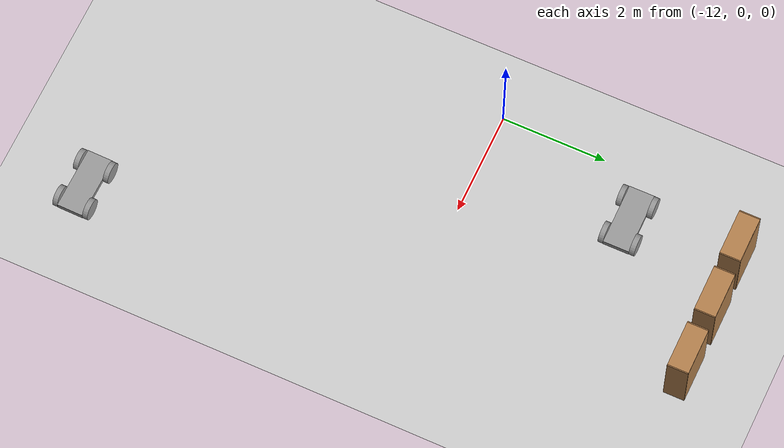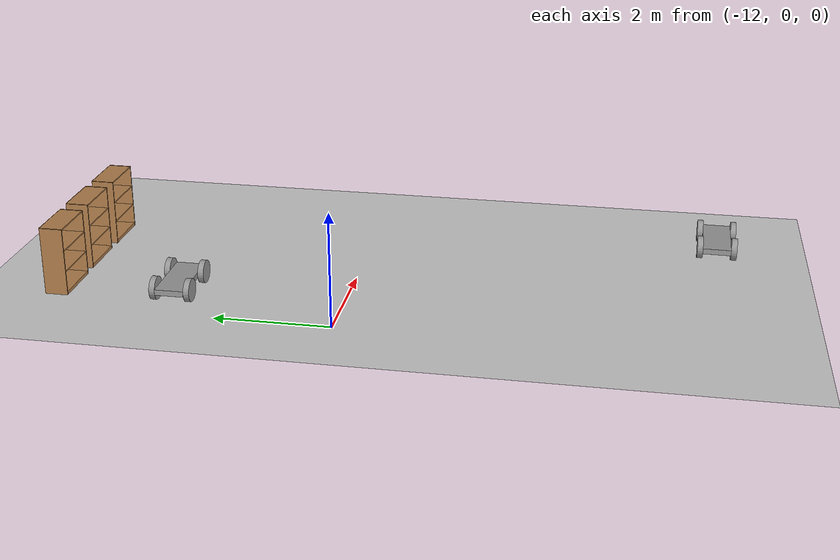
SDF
<sdf version="1.6">
 <world name="default">
  <model name="ground_plane">
   <static>1</static>
   <link name="link">
    <collision name="collision">
     <geometry><plane><normal>0 0 1</normal><size>100 100</size></plane></geometry>
     <surface>
      <contact><collide_bitmask>65535</collide_bitmask></contact>
      <friction><ode><mu>100</mu><mu2>50</mu2></ode></friction>
     </surface>
    </collision>
    <visual name="visual">
     <cast_shadows>0</cast_shadows>
     <geometry><plane><normal>0 0 1</normal><size>100 100</size></plane></geometry>
     <material>
      <script><uri>file://media/materials/scripts/gazebo.material</uri><name>Gazebo/Grey</name></script>
     </material>
    </visual>
   </link>
  </model>
  <model name="bookshelf">
   <static>1</static>
   <link name="link">
    <inertial><mass>1</mass></inertial>
    <collision name="back">
     <pose>0 0.005 0.6 0 -0 0</pose>
     <geometry><box><size>0.9 0.01 1.2</size></box></geometry>
    </collision>
    <visual name="visual1">
     <pose>0 0.005 0.6 0 -0 0</pose>
     <geometry><box><size>0.9 0.01 1.2</size></box></geometry>
     <material>
      <script><uri>file://media/materials/scripts/gazebo.material</uri><name>Gazebo/Wood</name></script>
     </material>
    </visual>
    <collision name="left_side">
     <pose>0.45 -0.195 0.6 0 -0 0</pose>
     <geometry><box><size>0.02 0.4 1.2</size></box></geometry>
    </collision>
    <visual name="visual2">
     <pose>0.45 -0.195 0.6 0 -0 0</pose>
     <geometry><box><size>0.02 0.4 1.2</size></box></geometry>
     <material>
      <script><uri>file://media/materials/scripts/gazebo.material</uri><name>Gazebo/Wood</name></script>
     </material>
    </visual>
    <collision name="right_side">
     <pose>-0.45 -0.195 0.6 0 -0 0</pose>
     <geometry><box><size>0.02 0.4 1.2</size></box></geometry>
    </collision>
    <visual name="visual3">
     <pose>-0.45 -0.195 0.6 0 -0 0</pose>
     <geometry><box><size>0.02 0.4 1.2</size></box></geometry>
     <material>
      <script><uri>file://media/materials/scripts/gazebo.material</uri><name>Gazebo/Wood</name></script>
     </material>
    </visual>
    <collision name="bottom">
     <pose>0 -0.195 0.03 0 -0 0</pose>
     <geometry><box><size>0.88 0.4 0.06</size></box></geometry>
    </collision>
    <visual name="visual4">
     <pose>0 -0.195 0.03 0 -0 0</pose>
     <geometry><box><size>0.88 0.4 0.06</size></box></geometry>
     <material>
      <script><uri>file://media/materials/scripts/gazebo.material</uri><name>Gazebo/Wood</name></script>
     </material>
    </visual>
    <collision name="top">
     <pose>0 -0.195 1.19 0 -0 0</pose>
     <geometry><box><size>0.88 0.4 0.02</size></box></geometry>
    </collision>
    <visual name="visual5">
     <pose>0 -0.195 1.19 0 -0 0</pose>
     <geometry><box><size>0.88 0.4 0.02</size></box></geometry>
     <material>
      <script><uri>file://media/materials/scripts/gazebo.material</uri><name>Gazebo/Wood</name></script>
     </material>
    </visual>
    <collision name="low_shelf">
     <pose>0 -0.195 0.43 0 -0 0</pose>
     <geometry><box><size>0.88 0.4 0.02</size></box></geometry>
    </collision>
    <visual name="visual6">
     <pose>0 -0.195 0.43 0 -0 0</pose>
     <geometry><box><size>0.88 0.4 0.02</size></box></geometry>
     <material>
      <script><uri>file://media/materials/scripts/gazebo.material</uri><name>Gazebo/Wood</name></script>
     </material>
    </visual>
    <collision name="high_shelf">
     <pose>0 -0.195 0.8 0 -0 0</pose>
     <geometry><box><size>0.88 0.4 0.02</size></box></geometry>
    </collision>
    <visual name="visual7">
     <pose>0 -0.195 0.8 0 -0 0</pose>
     <geometry><box><size>0.88 0.4 0.02</size></box></geometry>
     <material>
      <script><uri>file://media/materials/scripts/gazebo.material</uri><name>Gazebo/Wood</name></script>
     </material>
    </visual>
   </link>
   <pose>-11.095 5.12258 0 0 -0 0</pose>
  </model>
  <model name="bookshelf_clone">
   <static>1</static>
   <link name="link">
    <inertial><mass>1</mass></inertial>
    <collision name="back">
     <pose>0 0.005 0.6 0 -0 0</pose>
     <geometry><box><size>0.9 0.01 1.2</size></box></geometry>
    </collision>
    <visual name="visual1">
     <pose>0 0.005 0.6 0 -0 0</pose>
     <geometry><box><size>0.9 0.01 1.2</size></box></geometry>
     <material>
      <script><uri>file://media/materials/scripts/gazebo.material</uri><name>Gazebo/Wood</name></script>
     </material>
    </visual>
    <collision name="left_side">
     <pose>0.45 -0.195 0.6 0 -0 0</pose>
     <geometry><box><size>0.02 0.4 1.2</size></box></geometry>
    </collision>
    <visual name="visual2">
     <pose>0.45 -0.195 0.6 0 -0 0</pose>
     <geometry><box><size>0.02 0.4 1.2</size></box></geometry>
     <material>
      <script><uri>file://media/materials/scripts/gazebo.material</uri><name>Gazebo/Wood</name></script>
     </material>
    </visual>
    <collision name="right_side">
     <pose>-0.45 -0.195 0.6 0 -0 0</pose>
     <geometry><box><size>0.02 0.4 1.2</size></box></geometry>
    </collision>
    <visual name="visual3">
     <pose>-0.45 -0.195 0.6 0 -0 0</pose>
     <geometry><box><size>0.02 0.4 1.2</size></box></geometry>
     <material>
      <script><uri>file://media/materials/scripts/gazebo.material</uri><name>Gazebo/Wood</name></script>
     </material>
    </visual>
    <collision name="bottom">
     <pose>0 -0.195 0.03 0 -0 0</pose>
     <geometry><box><size>0.88 0.4 0.06</size></box></geometry>
    </collision>
    <visual name="visual4">
     <pose>0 -0.195 0.03 0 -0 0</pose>
     <geometry><box><size>0.88 0.4 0.06</size></box></geometry>
     <material>
      <script><uri>file://media/materials/scripts/gazebo.material</uri><name>Gazebo/Wood</name></script>
     </material>
    </visual>
    <collision name="top">
     <pose>0 -0.195 1.19 0 -0 0</pose>
     <geometry><box><size>0.88 0.4 0.02</size></box></geometry>
    </collision>
    <visual name="visual5">
     <pose>0 -0.195 1.19 0 -0 0</pose>
     <geometry><box><size>0.88 0.4 0.02</size></box></geometry>
     <material>
      <script><uri>file://media/materials/scripts/gazebo.material</uri><name>Gazebo/Wood</name></script>
     </material>
    </visual>
    <collision name="low_shelf">
     <pose>0 -0.195 0.43 0 -0 0</pose>
     <geometry><box><size>0.88 0.4 0.02</size></box></geometry>
    </collision>
    <visual name="visual6">
     <pose>0 -0.195 0.43 0 -0 0</pose>
     <geometry><box><size>0.88 0.4 0.02</size></box></geometry>
     <material>
      <script><uri>file://media/materials/scripts/gazebo.material</uri><name>Gazebo/Wood</name></script>
     </material>
    </visual>
    <collision name="high_shelf">
     <pose>0 -0.195 0.8 0 -0 0</pose>
     <geometry><box><size>0.88 0.4 0.02</size></box></geometry>
    </collision>
    <visual name="visual7">
     <pose>0 -0.195 0.8 0 -0 0</pose>
     <geometry><box><size>0.88 0.4 0.02</size></box></geometry>
     <material>
      <script><uri>file://media/materials/scripts/gazebo.material</uri><name>Gazebo/Wood</name></script>
     </material>
    </visual>
   </link>
   <pose>-9.92346 5.1367 0 0 -0 0</pose>
  </model>
  <model name="bookshelf_clone_0">
   <static>1</static>
   <link name="link">
    <inertial><mass>1</mass></inertial>
    <collision name="back">
     <pose>0 0.005 0.6 0 -0 0</pose>
     <geometry><box><size>0.9 0.01 1.2</size></box></geometry>
    </collision>
    <visual name="visual1">
     <pose>0 0.005 0.6 0 -0 0</pose>
     <geometry><box><size>0.9 0.01 1.2</size></box></geometry>
     <material>
      <script><uri>file://media/materials/scripts/gazebo.material</uri><name>Gazebo/Wood</name></script>
     </material>
    </visual>
    <collision name="left_side">
     <pose>0.45 -0.195 0.6 0 -0 0</pose>
     <geometry><box><size>0.02 0.4 1.2</size></box></geometry>
    </collision>
    <visual name="visual2">
     <pose>0.45 -0.195 0.6 0 -0 0</pose>
     <geometry><box><size>0.02 0.4 1.2</size></box></geometry>
     <material>
      <script><uri>file://media/materials/scripts/gazebo.material</uri><name>Gazebo/Wood</name></script>
     </material>
    </visual>
    <collision name="right_side">
     <pose>-0.45 -0.195 0.6 0 -0 0</pose>
     <geometry><box><size>0.02 0.4 1.2</size></box></geometry>
    </collision>
    <visual name="visual3">
     <pose>-0.45 -0.195 0.6 0 -0 0</pose>
     <geometry><box><size>0.02 0.4 1.2</size></box></geometry>
     <material>
      <script><uri>file://media/materials/scripts/gazebo.material</uri><name>Gazebo/Wood</name></script>
     </material>
    </visual>
    <collision name="bottom">
     <pose>0 -0.195 0.03 0 -0 0</pose>
     <geometry><box><size>0.88 0.4 0.06</size></box></geometry>
    </collision>
    <visual name="visual4">
     <pose>0 -0.195 0.03 0 -0 0</pose>
     <geometry><box><size>0.88 0.4 0.06</size></box></geometry>
     <material>
      <script><uri>file://media/materials/scripts/gazebo.material</uri><name>Gazebo/Wood</name></script>
     </material>
    </visual>
    <collision name="top">
     <pose>0 -0.195 1.19 0 -0 0</pose>
     <geometry><box><size>0.88 0.4 0.02</size></box></geometry>
    </collision>
    <visual name="visual5">
     <pose>0 -0.195 1.19 0 -0 0</pose>
     <geometry><box><size>0.88 0.4 0.02</size></box></geometry>
     <material>
      <script><uri>file://media/materials/scripts/gazebo.material</uri><name>Gazebo/Wood</name></script>
     </material>
    </visual>
    <collision name="low_shelf">
     <pose>0 -0.195 0.43 0 -0 0</pose>
     <geometry><box><size>0.88 0.4 0.02</size></box></geometry>
    </collision>
    <visual name="visual6">
     <pose>0 -0.195 0.43 0 -0 0</pose>
     <geometry><box><size>0.88 0.4 0.02</size></box></geometry>
     <material>
      <script><uri>file://media/materials/scripts/gazebo.material</uri><name>Gazebo/Wood</name></script>
     </material>
    </visual>
    <collision name="high_shelf">
     <pose>0 -0.195 0.8 0 -0 0</pose>
     <geometry><box><size>0.88 0.4 0.02</size></box></geometry>
    </collision>
    <visual name="visual7">
     <pose>0 -0.195 0.8 0 -0 0</pose>
     <geometry><box><size>0.88 0.4 0.02</size></box></geometry>
     <material>
      <script><uri>file://media/materials/scripts/gazebo.material</uri><name>Gazebo/Wood</name></script>
     </material>
    </visual>
   </link>
   <pose>-8.74874 5.12719 0 0 -0 0</pose>
  </model>
  <model name="robot">
   <link name="link">
    <inertial>
     <mass>1</mass>
     <inertia>
      <ixx>0.166667</ixx>
      <ixy>0</ixy>
      <ixz>0</ixz>
      <iyy>0.166667</iyy>
      <iyz>0</iyz>
      <izz>0.166667</izz>
     </inertia>
    </inertial>
    <visual name="visual">
     <geometry><box><size>1.2 0.5 0.1</size></box></geometry>
     <material>
      <script><name>Gazebo/Grey</name><uri>file://media/materials/scripts/gazebo.material</uri></script>
      <shader type="pixel"><normal_map>__default__</normal_map></shader>
      <ambient>0.3 0.3 0.3 1</ambient>
      <diffuse>0.7 0.7 0.7 1</diffuse>
      <specular>0.01 0.01 0.01 1</specular>
      <emissive>0 0 0 1</emissive>
     </material>
    </visual>
    <collision name="collision">
     <geometry><box><size>1.2 0.5 0.1</size></box></geometry>
     <surface>
      <friction>
       <ode><mu>1</mu><mu2>1</mu2><fdir1>0 0 0</fdir1><slip1>0</slip1><slip2>0</slip2></ode>
       <torsional>
        <coefficient>1</coefficient>
        <patch_radius>0</patch_radius>
        <surface_radius>0</surface_radius>
        <use_patch_radius>1</use_patch_radius>
        <ode><slip>0</slip></ode>
       </torsional>
      </friction>
      <bounce><restitution_coefficient>0</restitution_coefficient><threshold>1e+06</threshold></bounce>
      <contact>
       <collide_without_contact>0</collide_without_contact>
       <collide_without_contact_bitmask>1</collide_without_contact_bitmask>
       <collide_bitmask>1</collide_bitmask>
       <ode>
        <soft_cfm>0</soft_cfm>
        <soft_erp>0.2</soft_erp>
        <kp>1e+13</kp>
        <kd>1</kd>
        <max_vel>0.01</max_vel>
        <min_depth>0</min_depth>
       </ode>
       <bullet>
        <split_impulse>1</split_impulse>
        <split_impulse_penetration_threshold>-0.01</split_impulse_penetration_threshold>
        <soft_cfm>0</soft_cfm>
        <soft_erp>0.2</soft_erp>
        <kp>1e+13</kp>
        <kd>1</kd>
       </bullet>
      </contact>
     </surface>
    </collision>
   </link>
   <link name="link_0">
    <pose>-0.4 0.300019 -0 0 -0 0</pose>
    <inertial>
     <mass>1</mass>
     <inertia><ixx>0.145833</ixx><ixy>0</ixy><ixz>0</ixz><iyy>0.145833</iyy><iyz>0</iyz><izz>0.125</izz></inertia>
     <pose>0 0 0 1.5707 -0 0</pose>
    </inertial>
    <visual name="visual">
     <pose>0 0 0 1.5707 -0 0</pose>
     <geometry><cylinder><radius>0.2</radius><length>0.1</length></cylinder></geometry>
     <material>
      <lighting>1</lighting>
      <script><uri>file://media/materials/scripts/gazebo.material</uri><name>Gazebo/Grey</name></script>
      <shader type="pixel"><normal_map>__default__</normal_map></shader>
      <ambient>0.3 0.3 0.3 1</ambient>
      <diffuse>0.7 0.7 0.7 1</diffuse>
      <specular>0.01 0.01 0.01 1</specular>
      <emissive>0 0 0 1</emissive>
     </material>
    </visual>
    <collision name="collision">
     <pose>0 0 0 1.5707 -0 0</pose>
     <geometry><cylinder><radius>0.2</radius><length>0.1</length></cylinder></geometry>
     <surface>
      <friction>
       <ode><mu>1</mu><mu2>1</mu2><fdir1>0 0 0</fdir1><slip1>0</slip1><slip2>0</slip2></ode>
       <torsional>
        <coefficient>1</coefficient>
        <patch_radius>0</patch_radius>
        <surface_radius>0</surface_radius>
        <use_patch_radius>1</use_patch_radius>
        <ode><slip>0</slip></ode>
       </torsional>
      </friction>
      <bounce><restitution_coefficient>0</restitution_coefficient><threshold>1e+06</threshold></bounce>
      <contact>
       <collide_without_contact>0</collide_without_contact>
       <collide_without_contact_bitmask>1</collide_without_contact_bitmask>
       <collide_bitmask>1</collide_bitmask>
       <ode>
        <soft_cfm>0</soft_cfm>
        <soft_erp>0.2</soft_erp>
        <kp>1e+13</kp>
        <kd>1</kd>
        <max_vel>0.01</max_vel>
        <min_depth>0</min_depth>
       </ode>
       <bullet>
        <split_impulse>1</split_impulse>
        <split_impulse_penetration_threshold>-0.01</split_impulse_penetration_threshold>
        <soft_cfm>0</soft_cfm>
        <soft_erp>0.2</soft_erp>
        <kp>1e+13</kp>
        <kd>1</kd>
       </bullet>
      </contact>
     </surface>
    </collision>
   </link>
   <link name="link_0_clone">
    <pose>-0.4 -0.300019 -0 0 -0 0</pose>
    <inertial>
     <mass>1</mass>
     <inertia><ixx>0.145833</ixx><ixy>0</ixy><ixz>0</ixz><iyy>0.145833</iyy><iyz>0</iyz><izz>0.125</izz></inertia>
     <pose>0 0 0 1.5707 -0 0</pose>
    </inertial>
    <visual name="visual">
     <pose>0 0 0 1.5707 -0 0</pose>
     <geometry><cylinder><radius>0.2</radius><length>0.1</length></cylinder></geometry>
     <material>
      <lighting>1</lighting>
      <script><uri>file://media/materials/scripts/gazebo.material</uri><name>Gazebo/Grey</name></script>
      <shader type="pixel"><normal_map>__default__</normal_map></shader>
      <ambient>0.3 0.3 0.3 1</ambient>
      <diffuse>0.7 0.7 0.7 1</diffuse>
      <specular>0.01 0.01 0.01 1</specular>
      <emissive>0 0 0 1</emissive>
     </material>
    </visual>
    <collision name="collision">
     <pose>0 0 0 1.5707 -0 0</pose>
     <geometry><cylinder><radius>0.2</radius><length>0.1</length></cylinder></geometry>
     <surface>
      <friction>
       <ode><mu>1</mu><mu2>1</mu2><fdir1>0 0 0</fdir1><slip1>0</slip1><slip2>0</slip2></ode>
       <torsional>
        <coefficient>1</coefficient>
        <patch_radius>0</patch_radius>
        <surface_radius>0</surface_radius>
        <use_patch_radius>1</use_patch_radius>
        <ode><slip>0</slip></ode>
       </torsional>
      </friction>
      <bounce><restitution_coefficient>0</restitution_coefficient><threshold>1e+06</threshold></bounce>
      <contact>
       <collide_without_contact>0</collide_without_contact>
       <collide_without_contact_bitmask>1</collide_without_contact_bitmask>
       <collide_bitmask>1</collide_bitmask>
       <ode>
        <soft_cfm>0</soft_cfm>
        <soft_erp>0.2</soft_erp>
        <kp>1e+13</kp>
        <kd>1</kd>
        <max_vel>0.01</max_vel>
        <min_depth>0</min_depth>
       </ode>
       <bullet>
        <split_impulse>1</split_impulse>
        <split_impulse_penetration_threshold>-0.01</split_impulse_penetration_threshold>
        <soft_cfm>0</soft_cfm>
        <soft_erp>0.2</soft_erp>
        <kp>1e+13</kp>
        <kd>1</kd>
       </bullet>
      </contact>
     </surface>
    </collision>
   </link>
   <link name="link_0_clone_0">
    <pose>0.4 -0.300019 -0 0 -0 0</pose>
    <inertial>
     <mass>1</mass>
     <inertia><ixx>0.145833</ixx><ixy>0</ixy><ixz>0</ixz><iyy>0.145833</iyy><iyz>0</iyz><izz>0.125</izz></inertia>
     <pose>0 0 0 1.5707 -0 0</pose>
    </inertial>
    <visual name="visual">
     <pose>0 0 0 1.5707 -0 0</pose>
     <geometry><cylinder><radius>0.2</radius><length>0.1</length></cylinder></geometry>
     <material>
      <lighting>1</lighting>
      <script><uri>file://media/materials/scripts/gazebo.material</uri><name>Gazebo/Grey</name></script>
      <shader type="pixel"><normal_map>__default__</normal_map></shader>
      <ambient>0.3 0.3 0.3 1</ambient>
      <diffuse>0.7 0.7 0.7 1</diffuse>
      <specular>0.01 0.01 0.01 1</specular>
      <emissive>0 0 0 1</emissive>
     </material>
    </visual>
    <collision name="collision">
     <pose>0 0 0 1.5707 -0 0</pose>
     <geometry><cylinder><radius>0.2</radius><length>0.1</length></cylinder></geometry>
     <surface>
      <friction>
       <ode><mu>1</mu><mu2>1</mu2><fdir1>0 0 0</fdir1><slip1>0</slip1><slip2>0</slip2></ode>
       <torsional>
        <coefficient>1</coefficient>
        <patch_radius>0</patch_radius>
        <surface_radius>0</surface_radius>
        <use_patch_radius>1</use_patch_radius>
        <ode><slip>0</slip></ode>
       </torsional>
      </friction>
      <bounce><restitution_coefficient>0</restitution_coefficient><threshold>1e+06</threshold></bounce>
      <contact>
       <collide_without_contact>0</collide_without_contact>
       <collide_without_contact_bitmask>1</collide_without_contact_bitmask>
       <collide_bitmask>1</collide_bitmask>
       <ode>
        <soft_cfm>0</soft_cfm>
        <soft_erp>0.2</soft_erp>
        <kp>1e+13</kp>
        <kd>1</kd>
        <max_vel>0.01</max_vel>
        <min_depth>0</min_depth>
       </ode>
       <bullet>
        <split_impulse>1</split_impulse>
        <split_impulse_penetration_threshold>-0.01</split_impulse_penetration_threshold>
        <soft_cfm>0</soft_cfm>
        <soft_erp>0.2</soft_erp>
        <kp>1e+13</kp>
        <kd>1</kd>
       </bullet>
      </contact>
     </surface>
    </collision>
   </link>
   <link name="link_0_clone_1">
    <pose>0.4 0.300019 0 0 -0 0</pose>
    <inertial>
     <mass>1</mass>
     <inertia><ixx>0.145833</ixx><ixy>0</ixy><ixz>0</ixz><iyy>0.145833</iyy><iyz>0</iyz><izz>0.125</izz></inertia>
     <pose>0 0 0 1.5707 -0 0</pose>
    </inertial>
    <visual name="visual">
     <pose>0 0 0 1.5707 -0 0</pose>
     <geometry><cylinder><radius>0.2</radius><length>0.1</length></cylinder></geometry>
     <material>
      <lighting>1</lighting>
      <script><uri>file://media/materials/scripts/gazebo.material</uri><name>Gazebo/Grey</name></script>
      <shader type="pixel"><normal_map>__default__</normal_map></shader>
      <ambient>0.3 0.3 0.3 1</ambient>
      <diffuse>0.7 0.7 0.7 1</diffuse>
      <specular>0.01 0.01 0.01 1</specular>
      <emissive>0 0 0 1</emissive>
     </material>
    </visual>
    <collision name="collision">
     <pose>0 0 0 1.5707 -0 0</pose>
     <geometry><cylinder><radius>0.2</radius><length>0.1</length></cylinder></geometry>
     <surface>
      <friction>
       <ode><mu>1</mu><mu2>1</mu2><fdir1>0 0 0</fdir1><slip1>0</slip1><slip2>0</slip2></ode>
       <torsional>
        <coefficient>1</coefficient>
        <patch_radius>0</patch_radius>
        <surface_radius>0</surface_radius>
        <use_patch_radius>1</use_patch_radius>
        <ode><slip>0</slip></ode>
       </torsional>
      </friction>
      <bounce><restitution_coefficient>0</restitution_coefficient><threshold>1e+06</threshold></bounce>
      <contact>
       <collide_without_contact>0</collide_without_contact>
       <collide_without_contact_bitmask>1</collide_without_contact_bitmask>
       <collide_bitmask>1</collide_bitmask>
       <ode>
        <soft_cfm>0</soft_cfm>
        <soft_erp>0.2</soft_erp>
        <kp>1e+13</kp>
        <kd>1</kd>
        <max_vel>0.01</max_vel>
        <min_depth>0</min_depth>
       </ode>
       <bullet>
        <split_impulse>1</split_impulse>
        <split_impulse_penetration_threshold>-0.01</split_impulse_penetration_threshold>
        <soft_cfm>0</soft_cfm>
        <soft_erp>0.2</soft_erp>
        <kp>1e+13</kp>
        <kd>1</kd>
       </bullet>
      </contact>
     </surface>
    </collision>
   </link>
   <joint name="link_JOINT_0" type="revolute">
    <parent>link</parent>
    <child>link_0_clone</child>
    <axis>
     <xyz>0 0 1</xyz>
     <use_parent_model_frame>0</use_parent_model_frame>
     <limit>
      <lower>-1.79769e+308</lower>
      <upper>1.79769e+308</upper>
      <effort>-1</effort>
      <velocity>-1</velocity>
     </limit>
     <dynamics>
      <spring_reference>0</spring_reference>
      <spring_stiffness>0</spring_stiffness>
      <damping>0</damping>
     </dynamics>
    </axis>
    <physics>
     <ode><limit><cfm>0</cfm><erp>0.2</erp></limit><suspension><cfm>0</cfm><erp>0.2</erp></suspension></ode>
    </physics>
   </joint>
   <joint name="link_JOINT_1" type="revolute">
    <parent>link</parent>
    <child>link_0</child>
    <axis>
     <xyz>0 0 1</xyz>
     <use_parent_model_frame>0</use_parent_model_frame>
     <limit>
      <lower>-1.79769e+308</lower>
      <upper>1.79769e+308</upper>
      <effort>-1</effort>
      <velocity>-1</velocity>
     </limit>
     <dynamics>
      <spring_reference>0</spring_reference>
      <spring_stiffness>0</spring_stiffness>
      <damping>0</damping>
     </dynamics>
    </axis>
    <physics>
     <ode><limit><cfm>0</cfm><erp>0.2</erp></limit><suspension><cfm>0</cfm><erp>0.2</erp></suspension></ode>
    </physics>
   </joint>
   <joint name="link_JOINT_2" type="revolute">
    <parent>link</parent>
    <child>link_0_clone_0</child>
    <axis>
     <xyz>0 0 1</xyz>
     <use_parent_model_frame>0</use_parent_model_frame>
     <limit>
      <lower>-1.79769e+308</lower>
      <upper>1.79769e+308</upper>
      <effort>-1</effort>
      <velocity>-1</velocity>
     </limit>
     <dynamics>
      <spring_reference>0</spring_reference>
      <spring_stiffness>0</spring_stiffness>
      <damping>0</damping>
     </dynamics>
    </axis>
    <physics>
     <ode><limit><cfm>0</cfm><erp>0.2</erp></limit><suspension><cfm>0</cfm><erp>0.2</erp></suspension></ode>
    </physics>
   </joint>
   <joint name="link_JOINT_3" type="revolute">
    <parent>link</parent>
    <child>link_0_clone_1</child>
    <axis>
     <xyz>0 0 1</xyz>
     <use_parent_model_frame>0</use_parent_model_frame>
     <limit>
      <lower>-1.79769e+308</lower>
      <upper>1.79769e+308</upper>
      <effort>-1</effort>
      <velocity>-1</velocity>
     </limit>
     <dynamics>
      <spring_reference>0</spring_reference>
      <spring_stiffness>0</spring_stiffness>
      <damping>0</damping>
     </dynamics>
    </axis>
    <physics>
     <ode><limit><cfm>0</cfm><erp>0.2</erp></limit><suspension><cfm>0</cfm><erp>0.2</erp></suspension></ode>
    </physics>
   </joint>
   <static>0</static>
   <pose>-11.009 2.89412 0.200005 0 -0 0.003369</pose>
  </model>
  <model name="robot_0">
   <link name="link">
    <inertial>
     <mass>1</mass>
     <inertia>
      <ixx>0.166667</ixx>
      <ixy>0</ixy>
      <ixz>0</ixz>
      <iyy>0.166667</iyy>
      <iyz>0</iyz>
      <izz>0.166667</izz>
     </inertia>
    </inertial>
    <visual name="visual">
     <geometry><box><size>1.2 0.5 0.1</size></box></geometry>
     <material>
      <script><name>Gazebo/Grey</name><uri>file://media/materials/scripts/gazebo.material</uri></script>
      <shader type="pixel"><normal_map>__default__</normal_map></shader>
      <ambient>0.3 0.3 0.3 1</ambient>
      <diffuse>0.7 0.7 0.7 1</diffuse>
      <specular>0.01 0.01 0.01 1</specular>
      <emissive>0 0 0 1</emissive>
     </material>
    </visual>
    <collision name="collision">
     <geometry><box><size>1.2 0.5 0.1</size></box></geometry>
     <surface>
      <friction>
       <ode><mu>1</mu><mu2>1</mu2><fdir1>0 0 0</fdir1><slip1>0</slip1><slip2>0</slip2></ode>
       <torsional>
        <coefficient>1</coefficient>
        <patch_radius>0</patch_radius>
        <surface_radius>0</surface_radius>
        <use_patch_radius>1</use_patch_radius>
        <ode><slip>0</slip></ode>
       </torsional>
      </friction>
      <bounce><restitution_coefficient>0</restitution_coefficient><threshold>1e+06</threshold></bounce>
      <contact>
       <collide_without_contact>0</collide_without_contact>
       <collide_without_contact_bitmask>1</collide_without_contact_bitmask>
       <collide_bitmask>1</collide_bitmask>
       <ode>
        <soft_cfm>0</soft_cfm>
        <soft_erp>0.2</soft_erp>
        <kp>1e+13</kp>
        <kd>1</kd>
        <max_vel>0.01</max_vel>
        <min_depth>0</min_depth>
       </ode>
       <bullet>
        <split_impulse>1</split_impulse>
        <split_impulse_penetration_threshold>-0.01</split_impulse_penetration_threshold>
        <soft_cfm>0</soft_cfm>
        <soft_erp>0.2</soft_erp>
        <kp>1e+13</kp>
        <kd>1</kd>
       </bullet>
      </contact>
     </surface>
    </collision>
   </link>
   <link name="link_0">
    <pose>-0.4 0.300019 -0 0 -0 0</pose>
    <inertial>
     <mass>1</mass>
     <inertia><ixx>0.145833</ixx><ixy>0</ixy><ixz>0</ixz><iyy>0.145833</iyy><iyz>0</iyz><izz>0.125</izz></inertia>
     <pose>0 0 0 1.5707 -0 0</pose>
    </inertial>
    <visual name="visual">
     <pose>0 0 0 1.5707 -0 0</pose>
     <geometry><cylinder><radius>0.2</radius><length>0.1</length></cylinder></geometry>
     <material>
      <lighting>1</lighting>
      <script><uri>file://media/materials/scripts/gazebo.material</uri><name>Gazebo/Grey</name></script>
      <shader type="pixel"><normal_map>__default__</normal_map></shader>
      <ambient>0.3 0.3 0.3 1</ambient>
      <diffuse>0.7 0.7 0.7 1</diffuse>
      <specular>0.01 0.01 0.01 1</specular>
      <emissive>0 0 0 1</emissive>
     </material>
    </visual>
    <collision name="collision">
     <pose>0 0 0 1.5707 -0 0</pose>
     <geometry><cylinder><radius>0.2</radius><length>0.1</length></cylinder></geometry>
     <surface>
      <friction>
       <ode><mu>1</mu><mu2>1</mu2><fdir1>0 0 0</fdir1><slip1>0</slip1><slip2>0</slip2></ode>
       <torsional>
        <coefficient>1</coefficient>
        <patch_radius>0</patch_radius>
        <surface_radius>0</surface_radius>
        <use_patch_radius>1</use_patch_radius>
        <ode><slip>0</slip></ode>
       </torsional>
      </friction>
      <bounce><restitution_coefficient>0</restitution_coefficient><threshold>1e+06</threshold></bounce>
      <contact>
       <collide_without_contact>0</collide_without_contact>
       <collide_without_contact_bitmask>1</collide_without_contact_bitmask>
       <collide_bitmask>1</collide_bitmask>
       <ode>
        <soft_cfm>0</soft_cfm>
        <soft_erp>0.2</soft_erp>
        <kp>1e+13</kp>
        <kd>1</kd>
        <max_vel>0.01</max_vel>
        <min_depth>0</min_depth>
       </ode>
       <bullet>
        <split_impulse>1</split_impulse>
        <split_impulse_penetration_threshold>-0.01</split_impulse_penetration_threshold>
        <soft_cfm>0</soft_cfm>
        <soft_erp>0.2</soft_erp>
        <kp>1e+13</kp>
        <kd>1</kd>
       </bullet>
      </contact>
     </surface>
    </collision>
   </link>
   <link name="link_0_clone">
    <pose>-0.4 -0.300019 -0 0 -0 0</pose>
    <inertial>
     <mass>1</mass>
     <inertia><ixx>0.145833</ixx><ixy>0</ixy><ixz>0</ixz><iyy>0.145833</iyy><iyz>0</iyz><izz>0.125</izz></inertia>
     <pose>0 0 0 1.5707 -0 0</pose>
    </inertial>
    <visual name="visual">
     <pose>0 0 0 1.5707 -0 0</pose>
     <geometry><cylinder><radius>0.2</radius><length>0.1</length></cylinder></geometry>
     <material>
      <lighting>1</lighting>
      <script><uri>file://media/materials/scripts/gazebo.material</uri><name>Gazebo/Grey</name></script>
      <shader type="pixel"><normal_map>__default__</normal_map></shader>
      <ambient>0.3 0.3 0.3 1</ambient>
      <diffuse>0.7 0.7 0.7 1</diffuse>
      <specular>0.01 0.01 0.01 1</specular>
      <emissive>0 0 0 1</emissive>
     </material>
    </visual>
    <collision name="collision">
     <pose>0 0 0 1.5707 -0 0</pose>
     <geometry><cylinder><radius>0.2</radius><length>0.1</length></cylinder></geometry>
     <surface>
      <friction>
       <ode><mu>1</mu><mu2>1</mu2><fdir1>0 0 0</fdir1><slip1>0</slip1><slip2>0</slip2></ode>
       <torsional>
        <coefficient>1</coefficient>
        <patch_radius>0</patch_radius>
        <surface_radius>0</surface_radius>
        <use_patch_radius>1</use_patch_radius>
        <ode><slip>0</slip></ode>
       </torsional>
      </friction>
      <bounce><restitution_coefficient>0</restitution_coefficient><threshold>1e+06</threshold></bounce>
      <contact>
       <collide_without_contact>0</collide_without_contact>
       <collide_without_contact_bitmask>1</collide_without_contact_bitmask>
       <collide_bitmask>1</collide_bitmask>
       <ode>
        <soft_cfm>0</soft_cfm>
        <soft_erp>0.2</soft_erp>
        <kp>1e+13</kp>
        <kd>1</kd>
        <max_vel>0.01</max_vel>
        <min_depth>0</min_depth>
       </ode>
       <bullet>
        <split_impulse>1</split_impulse>
        <split_impulse_penetration_threshold>-0.01</split_impulse_penetration_threshold>
        <soft_cfm>0</soft_cfm>
        <soft_erp>0.2</soft_erp>
        <kp>1e+13</kp>
        <kd>1</kd>
       </bullet>
      </contact>
     </surface>
    </collision>
   </link>
   <link name="link_0_clone_0">
    <pose>0.4 -0.300019 -0 0 -0 0</pose>
    <inertial>
     <mass>1</mass>
     <inertia><ixx>0.145833</ixx><ixy>0</ixy><ixz>0</ixz><iyy>0.145833</iyy><iyz>0</iyz><izz>0.125</izz></inertia>
     <pose>0 0 0 1.5707 -0 0</pose>
    </inertial>
    <visual name="visual">
     <pose>0 0 0 1.5707 -0 0</pose>
     <geometry><cylinder><radius>0.2</radius><length>0.1</length></cylinder></geometry>
     <material>
      <lighting>1</lighting>
      <script><uri>file://media/materials/scripts/gazebo.material</uri><name>Gazebo/Grey</name></script>
      <shader type="pixel"><normal_map>__default__</normal_map></shader>
      <ambient>0.3 0.3 0.3 1</ambient>
      <diffuse>0.7 0.7 0.7 1</diffuse>
      <specular>0.01 0.01 0.01 1</specular>
      <emissive>0 0 0 1</emissive>
     </material>
    </visual>
    <collision name="collision">
     <pose>0 0 0 1.5707 -0 0</pose>
     <geometry><cylinder><radius>0.2</radius><length>0.1</length></cylinder></geometry>
     <surface>
      <friction>
       <ode><mu>1</mu><mu2>1</mu2><fdir1>0 0 0</fdir1><slip1>0</slip1><slip2>0</slip2></ode>
       <torsional>
        <coefficient>1</coefficient>
        <patch_radius>0</patch_radius>
        <surface_radius>0</surface_radius>
        <use_patch_radius>1</use_patch_radius>
        <ode><slip>0</slip></ode>
       </torsional>
      </friction>
      <bounce><restitution_coefficient>0</restitution_coefficient><threshold>1e+06</threshold></bounce>
      <contact>
       <collide_without_contact>0</collide_without_contact>
       <collide_without_contact_bitmask>1</collide_without_contact_bitmask>
       <collide_bitmask>1</collide_bitmask>
       <ode>
        <soft_cfm>0</soft_cfm>
        <soft_erp>0.2</soft_erp>
        <kp>1e+13</kp>
        <kd>1</kd>
        <max_vel>0.01</max_vel>
        <min_depth>0</min_depth>
       </ode>
       <bullet>
        <split_impulse>1</split_impulse>
        <split_impulse_penetration_threshold>-0.01</split_impulse_penetration_threshold>
        <soft_cfm>0</soft_cfm>
        <soft_erp>0.2</soft_erp>
        <kp>1e+13</kp>
        <kd>1</kd>
       </bullet>
      </contact>
     </surface>
    </collision>
   </link>
   <link name="link_0_clone_1">
    <pose>0.4 0.300019 0 0 -0 0</pose>
    <inertial>
     <mass>1</mass>
     <inertia><ixx>0.145833</ixx><ixy>0</ixy><ixz>0</ixz><iyy>0.145833</iyy><iyz>0</iyz><izz>0.125</izz></inertia>
     <pose>0 0 0 1.5707 -0 0</pose>
    </inertial>
    <visual name="visual">
     <pose>0 0 0 1.5707 -0 0</pose>
     <geometry><cylinder><radius>0.2</radius><length>0.1</length></cylinder></geometry>
     <material>
      <lighting>1</lighting>
      <script><uri>file://media/materials/scripts/gazebo.material</uri><name>Gazebo/Grey</name></script>
      <shader type="pixel"><normal_map>__default__</normal_map></shader>
      <ambient>0.3 0.3 0.3 1</ambient>
      <diffuse>0.7 0.7 0.7 1</diffuse>
      <specular>0.01 0.01 0.01 1</specular>
      <emissive>0 0 0 1</emissive>
     </material>
    </visual>
    <collision name="collision">
     <pose>0 0 0 1.5707 -0 0</pose>
     <geometry><cylinder><radius>0.2</radius><length>0.1</length></cylinder></geometry>
     <surface>
      <friction>
       <ode><mu>1</mu><mu2>1</mu2><fdir1>0 0 0</fdir1><slip1>0</slip1><slip2>0</slip2></ode>
       <torsional>
        <coefficient>1</coefficient>
        <patch_radius>0</patch_radius>
        <surface_radius>0</surface_radius>
        <use_patch_radius>1</use_patch_radius>
        <ode><slip>0</slip></ode>
       </torsional>
      </friction>
      <bounce><restitution_coefficient>0</restitution_coefficient><threshold>1e+06</threshold></bounce>
      <contact>
       <collide_without_contact>0</collide_without_contact>
       <collide_without_contact_bitmask>1</collide_without_contact_bitmask>
       <collide_bitmask>1</collide_bitmask>
       <ode>
        <soft_cfm>0</soft_cfm>
        <soft_erp>0.2</soft_erp>
        <kp>1e+13</kp>
        <kd>1</kd>
        <max_vel>0.01</max_vel>
        <min_depth>0</min_depth>
       </ode>
       <bullet>
        <split_impulse>1</split_impulse>
        <split_impulse_penetration_threshold>-0.01</split_impulse_penetration_threshold>
        <soft_cfm>0</soft_cfm>
        <soft_erp>0.2</soft_erp>
        <kp>1e+13</kp>
        <kd>1</kd>
       </bullet>
      </contact>
     </surface>
    </collision>
   </link>
   <joint name="link_JOINT_0" type="revolute">
    <parent>link</parent>
    <child>link_0_clone</child>
    <axis>
     <xyz>0 0 1</xyz>
     <use_parent_model_frame>0</use_parent_model_frame>
     <limit>
      <lower>-1.79769e+308</lower>
      <upper>1.79769e+308</upper>
      <effort>-1</effort>
      <velocity>-1</velocity>
     </limit>
     <dynamics>
      <spring_reference>0</spring_reference>
      <spring_stiffness>0</spring_stiffness>
      <damping>0</damping>
     </dynamics>
    </axis>
    <physics>
     <ode><limit><cfm>0</cfm><erp>0.2</erp></limit><suspension><cfm>0</cfm><erp>0.2</erp></suspension></ode>
    </physics>
   </joint>
   <joint name="link_JOINT_1" type="revolute">
    <parent>link</parent>
    <child>link_0</child>
    <axis>
     <xyz>0 0 1</xyz>
     <use_parent_model_frame>0</use_parent_model_frame>
     <limit>
      <lower>-1.79769e+308</lower>
      <upper>1.79769e+308</upper>
      <effort>-1</effort>
      <velocity>-1</velocity>
     </limit>
     <dynamics>
      <spring_reference>0</spring_reference>
      <spring_stiffness>0</spring_stiffness>
      <damping>0</damping>
     </dynamics>
    </axis>
    <physics>
     <ode><limit><cfm>0</cfm><erp>0.2</erp></limit><suspension><cfm>0</cfm><erp>0.2</erp></suspension></ode>
    </physics>
   </joint>
   <joint name="link_JOINT_2" type="revolute">
    <parent>link</parent>
    <child>link_0_clone_0</child>
    <axis>
     <xyz>0 0 1</xyz>
     <use_parent_model_frame>0</use_parent_model_frame>
     <limit>
      <lower>-1.79769e+308</lower>
      <upper>1.79769e+308</upper>
      <effort>-1</effort>
      <velocity>-1</velocity>
     </limit>
     <dynamics>
      <spring_reference>0</spring_reference>
      <spring_stiffness>0</spring_stiffness>
      <damping>0</damping>
     </dynamics>
    </axis>
    <physics>
     <ode><limit><cfm>0</cfm><erp>0.2</erp></limit><suspension><cfm>0</cfm><erp>0.2</erp></suspension></ode>
    </physics>
   </joint>
   <joint name="link_JOINT_3" type="revolute">
    <parent>link</parent>
    <child>link_0_clone_1</child>
    <axis>
     <xyz>0 0 1</xyz>
     <use_parent_model_frame>0</use_parent_model_frame>
     <limit>
      <lower>-1.79769e+308</lower>
      <upper>1.79769e+308</upper>
      <effort>-1</effort>
      <velocity>-1</velocity>
     </limit>
     <dynamics>
      <spring_reference>0</spring_reference>
      <spring_stiffness>0</spring_stiffness>
      <damping>0</damping>
     </dynamics>
    </axis>
    <physics>
     <ode><limit><cfm>0</cfm><erp>0.2</erp></limit><suspension><cfm>0</cfm><erp>0.2</erp></suspension></ode>
    </physics>
   </joint>
   <static>0</static>
   <pose>-7.58296 -6.25381 0.200003 5e-06 -0 -0.01507</pose>
  </model>
 </world>
</sdf>
